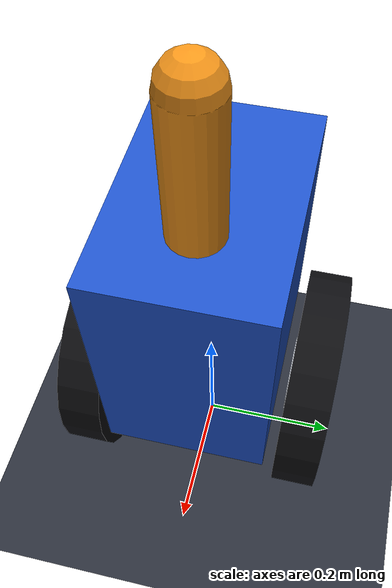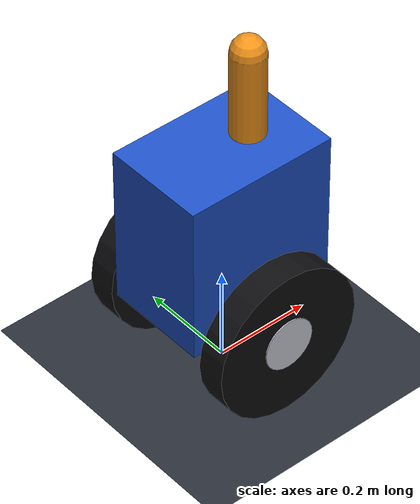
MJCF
<mujoco model="two_wheel_balance_bot">
  <!-- World axes: X forward, Y left, Z up. -->
  <compiler angle="radian" inertiafromgeom="true" autolimits="true" />
  <option timestep="0.002" gravity="0 0 -9.81" integrator="implicitfast"
          solver="Newton" iterations="50" tolerance="1e-10" />

  <default>
    <joint damping="0.003" armature="0.004" />
    <geom condim="4" friction="1.5 0.02 0.001" density="600"
          rgba="0.25 0.35 0.55 1" />
    <motor ctrllimited="true" ctrlrange="-4 4" />
  </default>

  <worldbody>
    <light name="key" pos="0 -3 5" dir="0 0 -1" directional="true" />
    <light name="fill" pos="-3 2 2" dir="1 -1 -0.5" />
    <geom name="ground" type="plane" size="8 8 0.1" rgba="0.16 0.18 0.22 1"
          friction="1.5 0.02 0.001" />

    <!-- The free-joint frame is deliberately at the wheel axle.  Keeping the
         body mass above it creates the inverted-pendulum dynamics. -->
    <body name="chassis" pos="0 0 0.160">
      <freejoint name="root" />
      <geom name="body" type="box" pos="0 0 0.18" size="0.16 0.11 0.17"
            mass="2.2" rgba="0.12 0.32 0.78 1" />
      <geom name="battery" type="box" pos="-0.055 0 0.085" size="0.075 0.075 0.055"
            mass="0.55" rgba="0.08 0.09 0.11 1" />
      <geom name="mast" type="capsule" pos="0.06 0 0.41" size="0.035 0.12"
            mass="0.35" rgba="0.95 0.58 0.10 1" />
      <site name="imu" pos="0 0 0" size="0.005" rgba="1 0 0 1" />

      <body name="left_wheel" pos="0 0.155 0">
        <joint name="left_wheel_hinge" type="hinge" axis="0 1 0" />
        <geom name="left_tire" type="cylinder" size="0.16 0.030" euler="1.570796 0 0"
              mass="0.28" rgba="0.055 0.055 0.065 1" />
        <geom name="left_hub" type="cylinder" size="0.055 0.032" euler="1.570796 0 0"
              mass="0.07" rgba="0.82 0.84 0.88 1" />
      </body>

      <body name="right_wheel" pos="0 -0.155 0">
        <joint name="right_wheel_hinge" type="hinge" axis="0 1 0" />
        <geom name="right_tire" type="cylinder" size="0.16 0.030" euler="1.570796 0 0"
              mass="0.28" rgba="0.055 0.055 0.065 1" />
        <geom name="right_hub" type="cylinder" size="0.055 0.032" euler="1.570796 0 0"
              mass="0.07" rgba="0.82 0.84 0.88 1" />
      </body>
    </body>
  </worldbody>

  <actuator>
    <motor name="left_motor" joint="left_wheel_hinge" gear="1" />
    <motor name="right_motor" joint="right_wheel_hinge" gear="1" />
  </actuator>

  <sensor>
    <!-- Measurements are expressed in the chassis frame. -->
    <gyro name="chassis_gyro" site="imu" />
    <velocimeter name="chassis_velocity" site="imu" />
  </sensor>
</mujoco>
